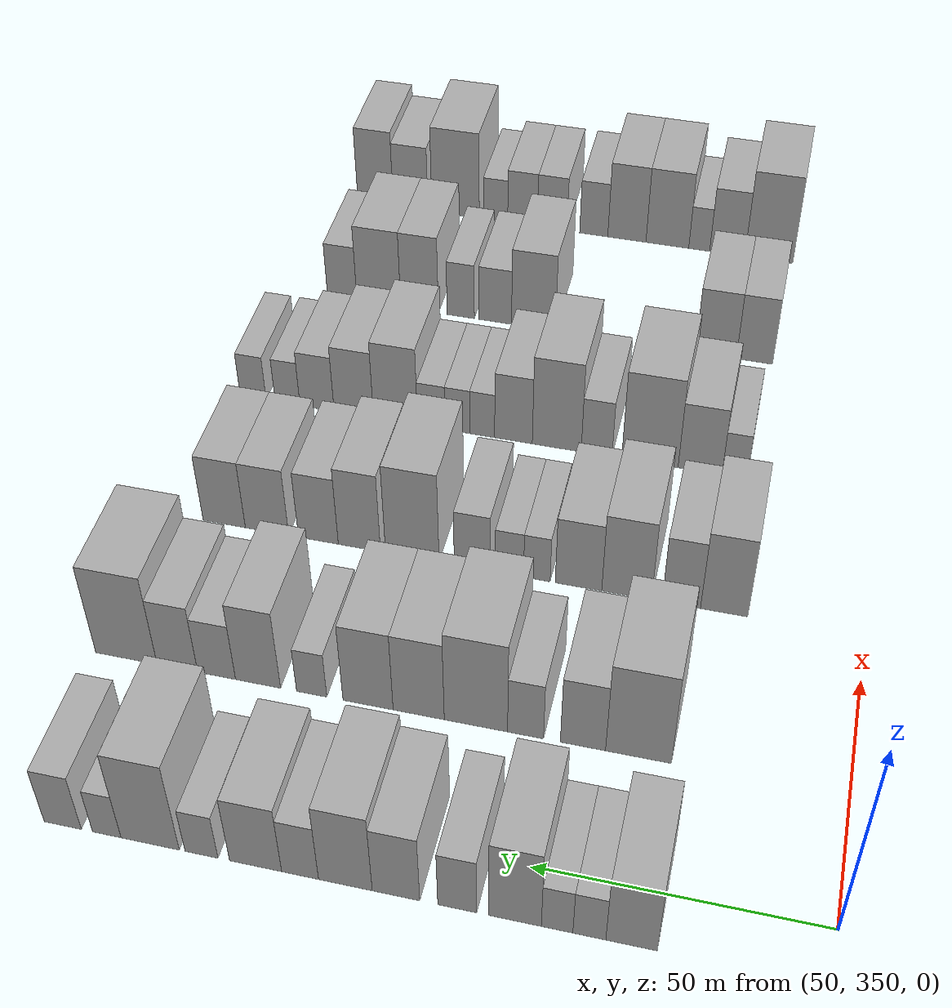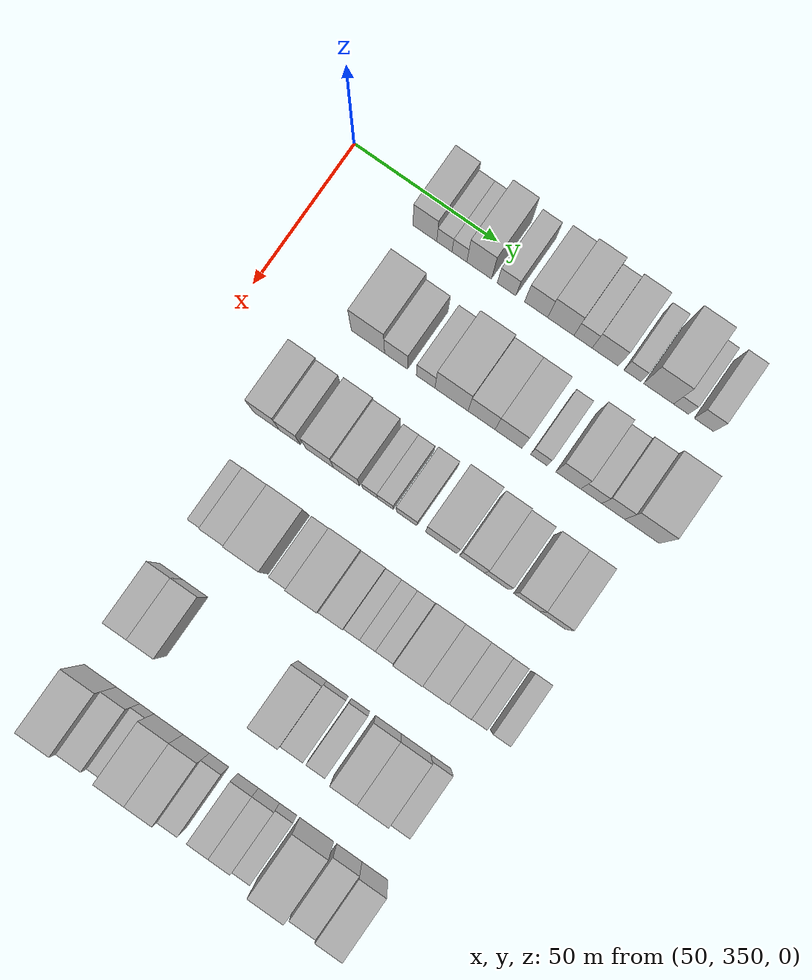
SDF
<sdf version="1.6">
 <world name="default">
  <model name="building_104">
   <static>1</static>
   <pose>50.0000 381.6446 0 0.000000 0.000000 0.000000</pose>
   <link name="link">
    <pose>0 0 9.00 0 0 0</pose>
    <collision name="collision"><geometry><box><size>20.0000 8.2494 18.0000</size></box></geometry></collision>
    <visual name="visual">
     <cast_shadows>0</cast_shadows>
     <geometry><box><size>20.0000 8.2494 18.0000</size></box></geometry>
     <material>
      <script>
       <uri>model://HANNAS_wall/materials/scripts</uri>
       <uri>model://HANNAS_wall/materials/textures</uri>
       <name>vrc/HANNAS_wall</name>
      </script>
     </material>
    </visual>
   </link>
  </model>
  <model name="building_105">
   <static>1</static>
   <pose>50.0000 388.4263 0 0.000000 0.000000 0.000000</pose>
   <link name="link">
    <pose>0 0 6.00 0 0 0</pose>
    <collision name="collision"><geometry><box><size>20.0000 5.3141 12.0000</size></box></geometry></collision>
    <visual name="visual">
     <cast_shadows>0</cast_shadows>
     <geometry><box><size>20.0000 5.3141 12.0000</size></box></geometry>
     <material>
      <script>
       <uri>model://HANNAS_wall/materials/scripts</uri>
       <uri>model://HANNAS_wall/materials/textures</uri>
       <name>vrc/HANNAS_wall</name>
      </script>
     </material>
    </visual>
   </link>
  </model>
  <model name="building_106">
   <static>1</static>
   <pose>50.0000 393.6430 0 0.000000 0.000000 0.000000</pose>
   <link name="link">
    <pose>0 0 6.00 0 0 0</pose>
    <collision name="collision"><geometry><box><size>20.0000 5.1193 12.0000</size></box></geometry></collision>
    <visual name="visual">
     <cast_shadows>0</cast_shadows>
     <geometry><box><size>20.0000 5.1193 12.0000</size></box></geometry>
     <material>
      <script>
       <uri>model://HANNAS_wall/materials/scripts</uri>
       <uri>model://HANNAS_wall/materials/textures</uri>
       <name>vrc/HANNAS_wall</name>
      </script>
     </material>
    </visual>
   </link>
  </model>
  <model name="building_107">
   <static>1</static>
   <pose>50.0000 400.4835 0 0.000000 0.000000 0.000000</pose>
   <link name="link">
    <pose>0 0 10.50 0 0 0</pose>
    <collision name="collision"><geometry><box><size>20.0000 8.5617 21.0000</size></box></geometry></collision>
    <visual name="visual">
     <cast_shadows>0</cast_shadows>
     <geometry><box><size>20.0000 8.5617 21.0000</size></box></geometry>
     <material>
      <script>
       <uri>model://HANNAS_wall/materials/scripts</uri>
       <uri>model://HANNAS_wall/materials/textures</uri>
       <name>vrc/HANNAS_wall</name>
      </script>
     </material>
    </visual>
   </link>
  </model>
  <model name="building_108">
   <static>1</static>
   <pose>50.0000 409.9893 0 0.000000 0.000000 0.000000</pose>
   <link name="link">
    <pose>0 0 7.50 0 0 0</pose>
    <collision name="collision"><geometry><box><size>20.0000 6.4499 15.0000</size></box></geometry></collision>
    <visual name="visual">
     <cast_shadows>0</cast_shadows>
     <geometry><box><size>20.0000 6.4499 15.0000</size></box></geometry>
     <material>
      <script>
       <uri>model://HANNAS_wall/materials/scripts</uri>
       <uri>model://HANNAS_wall/materials/textures</uri>
       <name>vrc/HANNAS_wall</name>
      </script>
     </material>
    </visual>
   </link>
  </model>
  <model name="building_109">
   <static>1</static>
   <pose>50.0000 420.1909 0 0.000000 0.000000 0.000000</pose>
   <link name="link">
    <pose>0 0 9.00 0 0 0</pose>
    <collision name="collision"><geometry><box><size>20.0000 7.9534 18.0000</size></box></geometry></collision>
    <visual name="visual">
     <cast_shadows>0</cast_shadows>
     <geometry><box><size>20.0000 7.9534 18.0000</size></box></geometry>
     <material>
      <script>
       <uri>model://HANNAS_wall/materials/scripts</uri>
       <uri>model://HANNAS_wall/materials/textures</uri>
       <name>vrc/HANNAS_wall</name>
      </script>
     </material>
    </visual>
   </link>
  </model>
  <model name="building_110">
   <static>1</static>
   <pose>50.0000 428.7106 0 0.000000 0.000000 0.000000</pose>
   <link name="link">
    <pose>0 0 10.50 0 0 0</pose>
    <collision name="collision"><geometry><box><size>20.0000 9.0861 21.0000</size></box></geometry></collision>
    <visual name="visual">
     <cast_shadows>0</cast_shadows>
     <geometry><box><size>20.0000 9.0861 21.0000</size></box></geometry>
     <material>
      <script>
       <uri>model://HANNAS_wall/materials/scripts</uri>
       <uri>model://HANNAS_wall/materials/textures</uri>
       <name>vrc/HANNAS_wall</name>
      </script>
     </material>
    </visual>
   </link>
  </model>
  <model name="building_111">
   <static>1</static>
   <pose>50.0000 436.3942 0 0.000000 0.000000 0.000000</pose>
   <link name="link">
    <pose>0 0 7.50 0 0 0</pose>
    <collision name="collision"><geometry><box><size>20.0000 6.2811 15.0000</size></box></geometry></collision>
    <visual name="visual">
     <cast_shadows>0</cast_shadows>
     <geometry><box><size>20.0000 6.2811 15.0000</size></box></geometry>
     <material>
      <script>
       <uri>model://HANNAS_wall/materials/scripts</uri>
       <uri>model://HANNAS_wall/materials/textures</uri>
       <name>vrc/HANNAS_wall</name>
      </script>
     </material>
    </visual>
   </link>
  </model>
  <model name="building_112">
   <static>1</static>
   <pose>50.0000 444.0253 0 0.000000 0.000000 0.000000</pose>
   <link name="link">
    <pose>0 0 9.00 0 0 0</pose>
    <collision name="collision"><geometry><box><size>20.0000 8.9812 18.0000</size></box></geometry></collision>
    <visual name="visual">
     <cast_shadows>0</cast_shadows>
     <geometry><box><size>20.0000 8.9812 18.0000</size></box></geometry>
     <material>
      <script>
       <uri>model://HANNAS_wall/materials/scripts</uri>
       <uri>model://HANNAS_wall/materials/textures</uri>
       <name>vrc/HANNAS_wall</name>
      </script>
     </material>
    </visual>
   </link>
  </model>
  <model name="building_113">
   <static>1</static>
   <pose>50.0000 453.3829 0 0.000000 0.000000 0.000000</pose>
   <link name="link">
    <pose>0 0 6.00 0 0 0</pose>
    <collision name="collision"><geometry><box><size>20.0000 5.7340 12.0000</size></box></geometry></collision>
    <visual name="visual">
     <cast_shadows>0</cast_shadows>
     <geometry><box><size>20.0000 5.7340 12.0000</size></box></geometry>
     <material>
      <script>
       <uri>model://HANNAS_wall/materials/scripts</uri>
       <uri>model://HANNAS_wall/materials/textures</uri>
       <name>vrc/HANNAS_wall</name>
      </script>
     </material>
    </visual>
   </link>
  </model>
  <model name="building_114">
   <static>1</static>
   <pose>50.0000 462.3751 0 0.000000 0.000000 0.000000</pose>
   <link name="link">
    <pose>0 0 12.00 0 0 0</pose>
    <collision name="collision"><geometry><box><size>20.0000 10.2504 24.0000</size></box></geometry></collision>
    <visual name="visual">
     <cast_shadows>0</cast_shadows>
     <geometry><box><size>20.0000 10.2504 24.0000</size></box></geometry>
     <material>
      <script>
       <uri>model://HANNAS_wall/materials/scripts</uri>
       <uri>model://HANNAS_wall/materials/textures</uri>
       <name>vrc/HANNAS_wall</name>
      </script>
     </material>
    </visual>
   </link>
  </model>
  <model name="building_115">
   <static>1</static>
   <pose>50.0000 470.0243 0 0.000000 0.000000 0.000000</pose>
   <link name="link">
    <pose>0 0 6.00 0 0 0</pose>
    <collision name="collision"><geometry><box><size>20.0000 5.0481 12.0000</size></box></geometry></collision>
    <visual name="visual">
     <cast_shadows>0</cast_shadows>
     <geometry><box><size>20.0000 5.0481 12.0000</size></box></geometry>
     <material>
      <script>
       <uri>model://HANNAS_wall/materials/scripts</uri>
       <uri>model://HANNAS_wall/materials/textures</uri>
       <name>vrc/HANNAS_wall</name>
      </script>
     </material>
    </visual>
   </link>
  </model>
  <model name="building_116">
   <static>1</static>
   <pose>50.0000 477.8656 0 0.000000 0.000000 0.000000</pose>
   <link name="link">
    <pose>0 0 7.50 0 0 0</pose>
    <collision name="collision"><geometry><box><size>20.0000 6.6344 15.0000</size></box></geometry></collision>
    <visual name="visual">
     <cast_shadows>0</cast_shadows>
     <geometry><box><size>20.0000 6.6344 15.0000</size></box></geometry>
     <material>
      <script>
       <uri>model://HANNAS_wall/materials/scripts</uri>
       <uri>model://HANNAS_wall/materials/textures</uri>
       <name>vrc/HANNAS_wall</name>
      </script>
     </material>
    </visual>
   </link>
  </model>
  <model name="building_234">
   <static>1</static>
   <pose>85.0000 386.3363 0 0.000000 0.000000 0.000000</pose>
   <link name="link">
    <pose>0 0 12.00 0 0 0</pose>
    <collision name="collision"><geometry><box><size>20.0000 11.5212 24.0000</size></box></geometry></collision>
    <visual name="visual">
     <cast_shadows>0</cast_shadows>
     <geometry><box><size>20.0000 11.5212 24.0000</size></box></geometry>
     <material>
      <script>
       <uri>model://HANNAS_wall/materials/scripts</uri>
       <uri>model://HANNAS_wall/materials/textures</uri>
       <name>vrc/HANNAS_wall</name>
      </script>
     </material>
    </visual>
   </link>
  </model>
  <model name="building_235">
   <static>1</static>
   <pose>85.0000 396.0856 0 0.000000 0.000000 0.000000</pose>
   <link name="link">
    <pose>0 0 9.00 0 0 0</pose>
    <collision name="collision"><geometry><box><size>20.0000 7.9775 18.0000</size></box></geometry></collision>
    <visual name="visual">
     <cast_shadows>0</cast_shadows>
     <geometry><box><size>20.0000 7.9775 18.0000</size></box></geometry>
     <material>
      <script>
       <uri>model://HANNAS_wall/materials/scripts</uri>
       <uri>model://HANNAS_wall/materials/textures</uri>
       <name>vrc/HANNAS_wall</name>
      </script>
     </material>
    </visual>
   </link>
  </model>
  <model name="building_236">
   <static>1</static>
   <pose>85.0000 406.2837 0 0.000000 0.000000 0.000000</pose>
   <link name="link">
    <pose>0 0 7.50 0 0 0</pose>
    <collision name="collision"><geometry><box><size>20.0000 6.4186 15.0000</size></box></geometry></collision>
    <visual name="visual">
     <cast_shadows>0</cast_shadows>
     <geometry><box><size>20.0000 6.4186 15.0000</size></box></geometry>
     <material>
      <script>
       <uri>model://HANNAS_wall/materials/scripts</uri>
       <uri>model://HANNAS_wall/materials/textures</uri>
       <name>vrc/HANNAS_wall</name>
      </script>
     </material>
    </visual>
   </link>
  </model>
  <model name="building_237">
   <static>1</static>
   <pose>85.0000 415.1947 0 0.000000 0.000000 0.000000</pose>
   <link name="link">
    <pose>0 0 12.00 0 0 0</pose>
    <collision name="collision"><geometry><box><size>20.0000 11.4033 24.0000</size></box></geometry></collision>
    <visual name="visual">
     <cast_shadows>0</cast_shadows>
     <geometry><box><size>20.0000 11.4033 24.0000</size></box></geometry>
     <material>
      <script>
       <uri>model://HANNAS_wall/materials/scripts</uri>
       <uri>model://HANNAS_wall/materials/textures</uri>
       <name>vrc/HANNAS_wall</name>
      </script>
     </material>
    </visual>
   </link>
  </model>
  <model name="building_238">
   <static>1</static>
   <pose>85.0000 425.5621 0 0.000000 0.000000 0.000000</pose>
   <link name="link">
    <pose>0 0 10.50 0 0 0</pose>
    <collision name="collision"><geometry><box><size>20.0000 9.3316 21.0000</size></box></geometry></collision>
    <visual name="visual">
     <cast_shadows>0</cast_shadows>
     <geometry><box><size>20.0000 9.3316 21.0000</size></box></geometry>
     <material>
      <script>
       <uri>model://HANNAS_wall/materials/scripts</uri>
       <uri>model://HANNAS_wall/materials/textures</uri>
       <name>vrc/HANNAS_wall</name>
      </script>
     </material>
    </visual>
   </link>
  </model>
  <model name="building_239">
   <static>1</static>
   <pose>85.0000 434.8440 0 0.000000 0.000000 0.000000</pose>
   <link name="link">
    <pose>0 0 10.50 0 0 0</pose>
    <collision name="collision"><geometry><box><size>20.0000 9.2321 21.0000</size></box></geometry></collision>
    <visual name="visual">
     <cast_shadows>0</cast_shadows>
     <geometry><box><size>20.0000 9.2321 21.0000</size></box></geometry>
     <material>
      <script>
       <uri>model://HANNAS_wall/materials/scripts</uri>
       <uri>model://HANNAS_wall/materials/textures</uri>
       <name>vrc/HANNAS_wall</name>
      </script>
     </material>
    </visual>
   </link>
  </model>
  <model name="building_240">
   <static>1</static>
   <pose>85.0000 445.2765 0 0.000000 0.000000 0.000000</pose>
   <link name="link">
    <pose>0 0 6.00 0 0 0</pose>
    <collision name="collision"><geometry><box><size>20.0000 5.6329 12.0000</size></box></geometry></collision>
    <visual name="visual">
     <cast_shadows>0</cast_shadows>
     <geometry><box><size>20.0000 5.6329 12.0000</size></box></geometry>
     <material>
      <script>
       <uri>model://HANNAS_wall/materials/scripts</uri>
       <uri>model://HANNAS_wall/materials/textures</uri>
       <name>vrc/HANNAS_wall</name>
      </script>
     </material>
    </visual>
   </link>
  </model>
  <model name="building_241">
   <static>1</static>
   <pose>85.0000 455.3296 0 0.000000 0.000000 0.000000</pose>
   <link name="link">
    <pose>0 0 10.50 0 0 0</pose>
    <collision name="collision"><geometry><box><size>20.0000 8.4732 21.0000</size></box></geometry></collision>
    <visual name="visual">
     <cast_shadows>0</cast_shadows>
     <geometry><box><size>20.0000 8.4732 21.0000</size></box></geometry>
     <material>
      <script>
       <uri>model://HANNAS_wall/materials/scripts</uri>
       <uri>model://HANNAS_wall/materials/textures</uri>
       <name>vrc/HANNAS_wall</name>
      </script>
     </material>
    </visual>
   </link>
  </model>
  <model name="building_242">
   <static>1</static>
   <pose>85.0000 463.1607 0 0.000000 0.000000 0.000000</pose>
   <link name="link">
    <pose>0 0 7.50 0 0 0</pose>
    <collision name="collision"><geometry><box><size>20.0000 7.1891 15.0000</size></box></geometry></collision>
    <visual name="visual">
     <cast_shadows>0</cast_shadows>
     <geometry><box><size>20.0000 7.1891 15.0000</size></box></geometry>
     <material>
      <script>
       <uri>model://HANNAS_wall/materials/scripts</uri>
       <uri>model://HANNAS_wall/materials/textures</uri>
       <name>vrc/HANNAS_wall</name>
      </script>
     </material>
    </visual>
   </link>
  </model>
  <model name="building_243">
   <static>1</static>
   <pose>85.0000 470.6412 0 0.000000 0.000000 0.000000</pose>
   <link name="link">
    <pose>0 0 9.00 0 0 0</pose>
    <collision name="collision"><geometry><box><size>20.0000 7.7719 18.0000</size></box></geometry></collision>
    <visual name="visual">
     <cast_shadows>0</cast_shadows>
     <geometry><box><size>20.0000 7.7719 18.0000</size></box></geometry>
     <material>
      <script>
       <uri>model://HANNAS_wall/materials/scripts</uri>
       <uri>model://HANNAS_wall/materials/textures</uri>
       <name>vrc/HANNAS_wall</name>
      </script>
     </material>
    </visual>
   </link>
  </model>
  <model name="building_244">
   <static>1</static>
   <pose>85.0000 480.4508 0 0.000000 0.000000 0.000000</pose>
   <link name="link">
    <pose>0 0 12.00 0 0 0</pose>
    <collision name="collision"><geometry><box><size>20.0000 11.8473 24.0000</size></box></geometry></collision>
    <visual name="visual">
     <cast_shadows>0</cast_shadows>
     <geometry><box><size>20.0000 11.8473 24.0000</size></box></geometry>
     <material>
      <script>
       <uri>model://HANNAS_wall/materials/scripts</uri>
       <uri>model://HANNAS_wall/materials/textures</uri>
       <name>vrc/HANNAS_wall</name>
      </script>
     </material>
    </visual>
   </link>
  </model>
  <model name="building_356">
   <static>1</static>
   <pose>120.0000 375.9862 0 0.000000 0.000000 0.000000</pose>
   <link name="link">
    <pose>0 0 10.50 0 0 0</pose>
    <collision name="collision"><geometry><box><size>20.0000 8.8281 21.0000</size></box></geometry></collision>
    <visual name="visual">
     <cast_shadows>0</cast_shadows>
     <geometry><box><size>20.0000 8.8281 21.0000</size></box></geometry>
     <material>
      <script>
       <uri>model://HANNAS_wall/materials/scripts</uri>
       <uri>model://HANNAS_wall/materials/textures</uri>
       <name>vrc/HANNAS_wall</name>
      </script>
     </material>
    </visual>
   </link>
  </model>
  <model name="building_357">
   <static>1</static>
   <pose>120.0000 384.0091 0 0.000000 0.000000 0.000000</pose>
   <link name="link">
    <pose>0 0 9.00 0 0 0</pose>
    <collision name="collision"><geometry><box><size>20.0000 7.2177 18.0000</size></box></geometry></collision>
    <visual name="visual">
     <cast_shadows>0</cast_shadows>
     <geometry><box><size>20.0000 7.2177 18.0000</size></box></geometry>
     <material>
      <script>
       <uri>model://HANNAS_wall/materials/scripts</uri>
       <uri>model://HANNAS_wall/materials/textures</uri>
       <name>vrc/HANNAS_wall</name>
      </script>
     </material>
    </visual>
   </link>
  </model>
  <model name="building_358">
   <static>1</static>
   <pose>120.0000 394.3634 0 0.000000 0.000000 0.000000</pose>
   <link name="link">
    <pose>0 0 10.50 0 0 0</pose>
    <collision name="collision"><geometry><box><size>20.0000 9.4908 21.0000</size></box></geometry></collision>
    <visual name="visual">
     <cast_shadows>0</cast_shadows>
     <geometry><box><size>20.0000 9.4908 21.0000</size></box></geometry>
     <material>
      <script>
       <uri>model://HANNAS_wall/materials/scripts</uri>
       <uri>model://HANNAS_wall/materials/textures</uri>
       <name>vrc/HANNAS_wall</name>
      </script>
     </material>
    </visual>
   </link>
  </model>
  <model name="building_359">
   <static>1</static>
   <pose>120.0000 403.5665 0 0.000000 0.000000 0.000000</pose>
   <link name="link">
    <pose>0 0 9.00 0 0 0</pose>
    <collision name="collision"><geometry><box><size>20.0000 8.9153 18.0000</size></box></geometry></collision>
    <visual name="visual">
     <cast_shadows>0</cast_shadows>
     <geometry><box><size>20.0000 8.9153 18.0000</size></box></geometry>
     <material>
      <script>
       <uri>model://HANNAS_wall/materials/scripts</uri>
       <uri>model://HANNAS_wall/materials/textures</uri>
       <name>vrc/HANNAS_wall</name>
      </script>
     </material>
    </visual>
   </link>
  </model>
  <model name="building_360">
   <static>1</static>
   <pose>120.0000 411.5930 0 0.000000 0.000000 0.000000</pose>
   <link name="link">
    <pose>0 0 6.00 0 0 0</pose>
    <collision name="collision"><geometry><box><size>20.0000 5.1377 12.0000</size></box></geometry></collision>
    <visual name="visual">
     <cast_shadows>0</cast_shadows>
     <geometry><box><size>20.0000 5.1377 12.0000</size></box></geometry>
     <material>
      <script>
       <uri>model://HANNAS_wall/materials/scripts</uri>
       <uri>model://HANNAS_wall/materials/textures</uri>
       <name>vrc/HANNAS_wall</name>
      </script>
     </material>
    </visual>
   </link>
  </model>
  <model name="building_361">
   <static>1</static>
   <pose>120.0000 416.9064 0 0.000000 0.000000 0.000000</pose>
   <link name="link">
    <pose>0 0 6.00 0 0 0</pose>
    <collision name="collision"><geometry><box><size>20.0000 5.4892 12.0000</size></box></geometry></collision>
    <visual name="visual">
     <cast_shadows>0</cast_shadows>
     <geometry><box><size>20.0000 5.4892 12.0000</size></box></geometry>
     <material>
      <script>
       <uri>model://HANNAS_wall/materials/scripts</uri>
       <uri>model://HANNAS_wall/materials/textures</uri>
       <name>vrc/HANNAS_wall</name>
      </script>
     </material>
    </visual>
   </link>
  </model>
  <model name="building_362">
   <static>1</static>
   <pose>120.0000 424.1684 0 0.000000 0.000000 0.000000</pose>
   <link name="link">
    <pose>0 0 7.50 0 0 0</pose>
    <collision name="collision"><geometry><box><size>20.0000 7.0348 15.0000</size></box></geometry></collision>
    <visual name="visual">
     <cast_shadows>0</cast_shadows>
     <geometry><box><size>20.0000 7.0348 15.0000</size></box></geometry>
     <material>
      <script>
       <uri>model://HANNAS_wall/materials/scripts</uri>
       <uri>model://HANNAS_wall/materials/textures</uri>
       <name>vrc/HANNAS_wall</name>
      </script>
     </material>
    </visual>
   </link>
  </model>
  <model name="building_363">
   <static>1</static>
   <pose>120.0000 435.9943 0 0.000000 0.000000 0.000000</pose>
   <link name="link">
    <pose>0 0 12.00 0 0 0</pose>
    <collision name="collision"><geometry><box><size>20.0000 10.6171 24.0000</size></box></geometry></collision>
    <visual name="visual">
     <cast_shadows>0</cast_shadows>
     <geometry><box><size>20.0000 10.6171 24.0000</size></box></geometry>
     <material>
      <script>
       <uri>model://HANNAS_wall/materials/scripts</uri>
       <uri>model://HANNAS_wall/materials/textures</uri>
       <name>vrc/HANNAS_wall</name>
      </script>
     </material>
    </visual>
   </link>
  </model>
  <model name="building_364">
   <static>1</static>
   <pose>120.0000 446.5358 0 0.000000 0.000000 0.000000</pose>
   <link name="link">
    <pose>0 0 10.50 0 0 0</pose>
    <collision name="collision"><geometry><box><size>20.0000 8.4660 21.0000</size></box></geometry></collision>
    <visual name="visual">
     <cast_shadows>0</cast_shadows>
     <geometry><box><size>20.0000 8.4660 21.0000</size></box></geometry>
     <material>
      <script>
       <uri>model://HANNAS_wall/materials/scripts</uri>
       <uri>model://HANNAS_wall/materials/textures</uri>
       <name>vrc/HANNAS_wall</name>
      </script>
     </material>
    </visual>
   </link>
  </model>
  <model name="building_365">
   <static>1</static>
   <pose>120.0000 454.7809 0 0.000000 0.000000 0.000000</pose>
   <link name="link">
    <pose>0 0 9.00 0 0 0</pose>
    <collision name="collision"><geometry><box><size>20.0000 8.0242 18.0000</size></box></geometry></collision>
    <visual name="visual">
     <cast_shadows>0</cast_shadows>
     <geometry><box><size>20.0000 8.0242 18.0000</size></box></geometry>
     <material>
      <script>
       <uri>model://HANNAS_wall/materials/scripts</uri>
       <uri>model://HANNAS_wall/materials/textures</uri>
       <name>vrc/HANNAS_wall</name>
      </script>
     </material>
    </visual>
   </link>
  </model>
  <model name="building_366">
   <static>1</static>
   <pose>120.0000 465.2200 0 0.000000 0.000000 0.000000</pose>
   <link name="link">
    <pose>0 0 9.00 0 0 0</pose>
    <collision name="collision"><geometry><box><size>20.0000 8.8541 18.0000</size></box></geometry></collision>
    <visual name="visual">
     <cast_shadows>0</cast_shadows>
     <geometry><box><size>20.0000 8.8541 18.0000</size></box></geometry>
     <material>
      <script>
       <uri>model://HANNAS_wall/materials/scripts</uri>
       <uri>model://HANNAS_wall/materials/textures</uri>
       <name>vrc/HANNAS_wall</name>
      </script>
     </material>
    </visual>
   </link>
  </model>
  <model name="building_367">
   <static>1</static>
   <pose>120.0000 473.9905 0 0.000000 0.000000 0.000000</pose>
   <link name="link">
    <pose>0 0 9.00 0 0 0</pose>
    <collision name="collision"><geometry><box><size>20.0000 8.6868 18.0000</size></box></geometry></collision>
    <visual name="visual">
     <cast_shadows>0</cast_shadows>
     <geometry><box><size>20.0000 8.6868 18.0000</size></box></geometry>
     <material>
      <script>
       <uri>model://HANNAS_wall/materials/scripts</uri>
       <uri>model://HANNAS_wall/materials/textures</uri>
       <name>vrc/HANNAS_wall</name>
      </script>
     </material>
    </visual>
   </link>
  </model>
  <model name="building_488">
   <static>1</static>
   <pose>155.0000 378.3842 0 0.000000 0.000000 0.000000</pose>
   <link name="link">
    <pose>0 0 6.00 0 0 0</pose>
    <collision name="collision"><geometry><box><size>20.0000 5.0669 12.0000</size></box></geometry></collision>
    <visual name="visual">
     <cast_shadows>0</cast_shadows>
     <geometry><box><size>20.0000 5.0669 12.0000</size></box></geometry>
     <material>
      <script>
       <uri>model://HANNAS_wall/materials/scripts</uri>
       <uri>model://HANNAS_wall/materials/textures</uri>
       <name>vrc/HANNAS_wall</name>
      </script>
     </material>
    </visual>
   </link>
  </model>
  <model name="building_489">
   <static>1</static>
   <pose>155.0000 385.3664 0 0.000000 0.000000 0.000000</pose>
   <link name="link">
    <pose>0 0 9.00 0 0 0</pose>
    <collision name="collision"><geometry><box><size>20.0000 8.8975 18.0000</size></box></geometry></collision>
    <visual name="visual">
     <cast_shadows>0</cast_shadows>
     <geometry><box><size>20.0000 8.8975 18.0000</size></box></geometry>
     <material>
      <script>
       <uri>model://HANNAS_wall/materials/scripts</uri>
       <uri>model://HANNAS_wall/materials/textures</uri>
       <name>vrc/HANNAS_wall</name>
      </script>
     </material>
    </visual>
   </link>
  </model>
  <model name="building_490">
   <static>1</static>
   <pose>155.0000 395.5703 0 0.000000 0.000000 0.000000</pose>
   <link name="link">
    <pose>0 0 12.00 0 0 0</pose>
    <collision name="collision"><geometry><box><size>20.0000 11.5102 24.0000</size></box></geometry></collision>
    <visual name="visual">
     <cast_shadows>0</cast_shadows>
     <geometry><box><size>20.0000 11.5102 24.0000</size></box></geometry>
     <material>
      <script>
       <uri>model://HANNAS_wall/materials/scripts</uri>
       <uri>model://HANNAS_wall/materials/textures</uri>
       <name>vrc/HANNAS_wall</name>
      </script>
     </material>
    </visual>
   </link>
  </model>
  <model name="building_491">
   <static>1</static>
   <pose>155.0000 406.5127 0 0.000000 0.000000 0.000000</pose>
   <link name="link">
    <pose>0 0 7.50 0 0 0</pose>
    <collision name="collision"><geometry><box><size>20.0000 6.3747 15.0000</size></box></geometry></collision>
    <visual name="visual">
     <cast_shadows>0</cast_shadows>
     <geometry><box><size>20.0000 6.3747 15.0000</size></box></geometry>
     <material>
      <script>
       <uri>model://HANNAS_wall/materials/scripts</uri>
       <uri>model://HANNAS_wall/materials/textures</uri>
       <name>vrc/HANNAS_wall</name>
      </script>
     </material>
    </visual>
   </link>
  </model>
  <model name="building_492">
   <static>1</static>
   <pose>155.0000 414.7891 0 0.000000 0.000000 0.000000</pose>
   <link name="link">
    <pose>0 0 12.00 0 0 0</pose>
    <collision name="collision"><geometry><box><size>20.0000 10.1780 24.0000</size></box></geometry></collision>
    <visual name="visual">
     <cast_shadows>0</cast_shadows>
     <geometry><box><size>20.0000 10.1780 24.0000</size></box></geometry>
     <material>
      <script>
       <uri>model://HANNAS_wall/materials/scripts</uri>
       <uri>model://HANNAS_wall/materials/textures</uri>
       <name>vrc/HANNAS_wall</name>
      </script>
     </material>
    </visual>
   </link>
  </model>
  <model name="building_493">
   <static>1</static>
   <pose>155.0000 423.8213 0 0.000000 0.000000 0.000000</pose>
   <link name="link">
    <pose>0 0 9.00 0 0 0</pose>
    <collision name="collision"><geometry><box><size>20.0000 7.8865 18.0000</size></box></geometry></collision>
    <visual name="visual">
     <cast_shadows>0</cast_shadows>
     <geometry><box><size>20.0000 7.8865 18.0000</size></box></geometry>
     <material>
      <script>
       <uri>model://HANNAS_wall/materials/scripts</uri>
       <uri>model://HANNAS_wall/materials/textures</uri>
       <name>vrc/HANNAS_wall</name>
      </script>
     </material>
    </visual>
   </link>
  </model>
  <model name="building_494">
   <static>1</static>
   <pose>155.0000 430.3783 0 0.000000 0.000000 0.000000</pose>
   <link name="link">
    <pose>0 0 6.00 0 0 0</pose>
    <collision name="collision"><geometry><box><size>20.0000 5.2275 12.0000</size></box></geometry></collision>
    <visual name="visual">
     <cast_shadows>0</cast_shadows>
     <geometry><box><size>20.0000 5.2275 12.0000</size></box></geometry>
     <material>
      <script>
       <uri>model://HANNAS_wall/materials/scripts</uri>
       <uri>model://HANNAS_wall/materials/textures</uri>
       <name>vrc/HANNAS_wall</name>
      </script>
     </material>
    </visual>
   </link>
  </model>
  <model name="building_495">
   <static>1</static>
   <pose>155.0000 435.6176 0 0.000000 0.000000 0.000000</pose>
   <link name="link">
    <pose>0 0 6.00 0 0 0</pose>
    <collision name="collision"><geometry><box><size>20.0000 5.2511 12.0000</size></box></geometry></collision>
    <visual name="visual">
     <cast_shadows>0</cast_shadows>
     <geometry><box><size>20.0000 5.2511 12.0000</size></box></geometry>
     <material>
      <script>
       <uri>model://HANNAS_wall/materials/scripts</uri>
       <uri>model://HANNAS_wall/materials/textures</uri>
       <name>vrc/HANNAS_wall</name>
      </script>
     </material>
    </visual>
   </link>
  </model>
  <model name="building_496">
   <static>1</static>
   <pose>155.0000 441.1735 0 0.000000 0.000000 0.000000</pose>
   <link name="link">
    <pose>0 0 6.00 0 0 0</pose>
    <collision name="collision"><geometry><box><size>20.0000 5.8608 12.0000</size></box></geometry></collision>
    <visual name="visual">
     <cast_shadows>0</cast_shadows>
     <geometry><box><size>20.0000 5.8608 12.0000</size></box></geometry>
     <material>
      <script>
       <uri>model://HANNAS_wall/materials/scripts</uri>
       <uri>model://HANNAS_wall/materials/textures</uri>
       <name>vrc/HANNAS_wall</name>
      </script>
     </material>
    </visual>
   </link>
  </model>
  <model name="building_497">
   <static>1</static>
   <pose>155.0000 448.8467 0 0.000000 0.000000 0.000000</pose>
   <link name="link">
    <pose>0 0 10.50 0 0 0</pose>
    <collision name="collision"><geometry><box><size>20.0000 9.4856 21.0000</size></box></geometry></collision>
    <visual name="visual">
     <cast_shadows>0</cast_shadows>
     <geometry><box><size>20.0000 9.4856 21.0000</size></box></geometry>
     <material>
      <script>
       <uri>model://HANNAS_wall/materials/scripts</uri>
       <uri>model://HANNAS_wall/materials/textures</uri>
       <name>vrc/HANNAS_wall</name>
      </script>
     </material>
    </visual>
   </link>
  </model>
  <model name="building_498">
   <static>1</static>
   <pose>155.0000 457.8550 0 0.000000 0.000000 0.000000</pose>
   <link name="link">
    <pose>0 0 9.00 0 0 0</pose>
    <collision name="collision"><geometry><box><size>20.0000 8.5311 18.0000</size></box></geometry></collision>
    <visual name="visual">
     <cast_shadows>0</cast_shadows>
     <geometry><box><size>20.0000 8.5311 18.0000</size></box></geometry>
     <material>
      <script>
       <uri>model://HANNAS_wall/materials/scripts</uri>
       <uri>model://HANNAS_wall/materials/textures</uri>
       <name>vrc/HANNAS_wall</name>
      </script>
     </material>
    </visual>
   </link>
  </model>
  <model name="building_499">
   <static>1</static>
   <pose>155.0000 465.8380 0 0.000000 0.000000 0.000000</pose>
   <link name="link">
    <pose>0 0 7.50 0 0 0</pose>
    <collision name="collision"><geometry><box><size>20.0000 7.4348 15.0000</size></box></geometry></collision>
    <visual name="visual">
     <cast_shadows>0</cast_shadows>
     <geometry><box><size>20.0000 7.4348 15.0000</size></box></geometry>
     <material>
      <script>
       <uri>model://HANNAS_wall/materials/scripts</uri>
       <uri>model://HANNAS_wall/materials/textures</uri>
       <name>vrc/HANNAS_wall</name>
      </script>
     </material>
    </visual>
   </link>
  </model>
  <model name="building_500">
   <static>1</static>
   <pose>155.0000 472.2700 0 0.000000 0.000000 0.000000</pose>
   <link name="link">
    <pose>0 0 6.00 0 0 0</pose>
    <collision name="collision"><geometry><box><size>20.0000 5.4293 12.0000</size></box></geometry></collision>
    <visual name="visual">
     <cast_shadows>0</cast_shadows>
     <geometry><box><size>20.0000 5.4293 12.0000</size></box></geometry>
     <material>
      <script>
       <uri>model://HANNAS_wall/materials/scripts</uri>
       <uri>model://HANNAS_wall/materials/textures</uri>
       <name>vrc/HANNAS_wall</name>
      </script>
     </material>
    </visual>
   </link>
  </model>
  <model name="building_501">
   <static>1</static>
   <pose>155.0000 479.8411 0 0.000000 0.000000 0.000000</pose>
   <link name="link">
    <pose>0 0 6.00 0 0 0</pose>
    <collision name="collision"><geometry><box><size>20.0000 5.7128 12.0000</size></box></geometry></collision>
    <visual name="visual">
     <cast_shadows>0</cast_shadows>
     <geometry><box><size>20.0000 5.7128 12.0000</size></box></geometry>
     <material>
      <script>
       <uri>model://HANNAS_wall/materials/scripts</uri>
       <uri>model://HANNAS_wall/materials/textures</uri>
       <name>vrc/HANNAS_wall</name>
      </script>
     </material>
    </visual>
   </link>
  </model>
  <model name="building_617">
   <static>1</static>
   <pose>190.0000 378.4721 0 0.000000 0.000000 0.000000</pose>
   <link name="link">
    <pose>0 0 9.00 0 0 0</pose>
    <collision name="collision"><geometry><box><size>20.0000 7.8103 18.0000</size></box></geometry></collision>
    <visual name="visual">
     <cast_shadows>0</cast_shadows>
     <geometry><box><size>20.0000 7.8103 18.0000</size></box></geometry>
     <material>
      <script>
       <uri>model://HANNAS_wall/materials/scripts</uri>
       <uri>model://HANNAS_wall/materials/textures</uri>
       <name>vrc/HANNAS_wall</name>
      </script>
     </material>
    </visual>
   </link>
  </model>
  <model name="building_618">
   <static>1</static>
   <pose>190.0000 386.7947 0 0.000000 0.000000 0.000000</pose>
   <link name="link">
    <pose>0 0 9.00 0 0 0</pose>
    <collision name="collision"><geometry><box><size>20.0000 8.8347 18.0000</size></box></geometry></collision>
    <visual name="visual">
     <cast_shadows>0</cast_shadows>
     <geometry><box><size>20.0000 8.8347 18.0000</size></box></geometry>
     <material>
      <script>
       <uri>model://HANNAS_wall/materials/scripts</uri>
       <uri>model://HANNAS_wall/materials/textures</uri>
       <name>vrc/HANNAS_wall</name>
      </script>
     </material>
    </visual>
   </link>
  </model>
  <model name="building_619">
   <static>1</static>
   <pose>190.0000 427.0063 0 0.000000 0.000000 0.000000</pose>
   <link name="link">
    <pose>0 0 10.50 0 0 0</pose>
    <collision name="collision"><geometry><box><size>20.0000 9.8629 21.0000</size></box></geometry></collision>
    <visual name="visual">
     <cast_shadows>0</cast_shadows>
     <geometry><box><size>20.0000 9.8629 21.0000</size></box></geometry>
     <material>
      <script>
       <uri>model://HANNAS_wall/materials/scripts</uri>
       <uri>model://HANNAS_wall/materials/textures</uri>
       <name>vrc/HANNAS_wall</name>
      </script>
     </material>
    </visual>
   </link>
  </model>
  <model name="building_620">
   <static>1</static>
   <pose>190.0000 435.6390 0 0.000000 0.000000 0.000000</pose>
   <link name="link">
    <pose>0 0 7.50 0 0 0</pose>
    <collision name="collision"><geometry><box><size>20.0000 7.4024 15.0000</size></box></geometry></collision>
    <visual name="visual">
     <cast_shadows>0</cast_shadows>
     <geometry><box><size>20.0000 7.4024 15.0000</size></box></geometry>
     <material>
      <script>
       <uri>model://HANNAS_wall/materials/scripts</uri>
       <uri>model://HANNAS_wall/materials/textures</uri>
       <name>vrc/HANNAS_wall</name>
      </script>
     </material>
    </visual>
   </link>
  </model>
  <model name="building_621">
   <static>1</static>
   <pose>190.0000 443.4324 0 0.000000 0.000000 0.000000</pose>
   <link name="link">
    <pose>0 0 7.50 0 0 0</pose>
    <collision name="collision"><geometry><box><size>20.0000 6.1844 15.0000</size></box></geometry></collision>
    <visual name="visual">
     <cast_shadows>0</cast_shadows>
     <geometry><box><size>20.0000 6.1844 15.0000</size></box></geometry>
     <material>
      <script>
       <uri>model://HANNAS_wall/materials/scripts</uri>
       <uri>model://HANNAS_wall/materials/textures</uri>
       <name>vrc/HANNAS_wall</name>
      </script>
     </material>
    </visual>
   </link>
  </model>
  <model name="building_622">
   <static>1</static>
   <pose>190.0000 452.8432 0 0.000000 0.000000 0.000000</pose>
   <link name="link">
    <pose>0 0 10.50 0 0 0</pose>
    <collision name="collision"><geometry><box><size>20.0000 8.6372 21.0000</size></box></geometry></collision>
    <visual name="visual">
     <cast_shadows>0</cast_shadows>
     <geometry><box><size>20.0000 8.6372 21.0000</size></box></geometry>
     <material>
      <script>
       <uri>model://HANNAS_wall/materials/scripts</uri>
       <uri>model://HANNAS_wall/materials/textures</uri>
       <name>vrc/HANNAS_wall</name>
      </script>
     </material>
    </visual>
   </link>
  </model>
  <model name="building_623">
   <static>1</static>
   <pose>190.0000 462.2333 0 0.000000 0.000000 0.000000</pose>
   <link name="link">
    <pose>0 0 10.50 0 0 0</pose>
    <collision name="collision"><geometry><box><size>20.0000 10.1431 21.0000</size></box></geometry></collision>
    <visual name="visual">
     <cast_shadows>0</cast_shadows>
     <geometry><box><size>20.0000 10.1431 21.0000</size></box></geometry>
     <material>
      <script>
       <uri>model://HANNAS_wall/materials/scripts</uri>
       <uri>model://HANNAS_wall/materials/textures</uri>
       <name>vrc/HANNAS_wall</name>
      </script>
     </material>
    </visual>
   </link>
  </model>
  <model name="building_624">
   <static>1</static>
   <pose>190.0000 470.7242 0 0.000000 0.000000 0.000000</pose>
   <link name="link">
    <pose>0 0 7.50 0 0 0</pose>
    <collision name="collision"><geometry><box><size>20.0000 6.8386 15.0000</size></box></geometry></collision>
    <visual name="visual">
     <cast_shadows>0</cast_shadows>
     <geometry><box><size>20.0000 6.8386 15.0000</size></box></geometry>
     <material>
      <script>
       <uri>model://HANNAS_wall/materials/scripts</uri>
       <uri>model://HANNAS_wall/materials/textures</uri>
       <name>vrc/HANNAS_wall</name>
      </script>
     </material>
    </visual>
   </link>
  </model>
  <model name="building_747">
   <static>1</static>
   <pose>225.0000 379.2323 0 0.000000 0.000000 0.000000</pose>
   <link name="link">
    <pose>0 0 12.00 0 0 0</pose>
    <collision name="collision"><geometry><box><size>20.0000 10.9925 24.0000</size></box></geometry></collision>
    <visual name="visual">
     <cast_shadows>0</cast_shadows>
     <geometry><box><size>20.0000 10.9925 24.0000</size></box></geometry>
     <material>
      <script>
       <uri>model://HANNAS_wall/materials/scripts</uri>
       <uri>model://HANNAS_wall/materials/textures</uri>
       <name>vrc/HANNAS_wall</name>
      </script>
     </material>
    </visual>
   </link>
  </model>
  <model name="building_748">
   <static>1</static>
   <pose>225.0000 388.7865 0 0.000000 0.000000 0.000000</pose>
   <link name="link">
    <pose>0 0 9.00 0 0 0</pose>
    <collision name="collision"><geometry><box><size>20.0000 8.1160 18.0000</size></box></geometry></collision>
    <visual name="visual">
     <cast_shadows>0</cast_shadows>
     <geometry><box><size>20.0000 8.1160 18.0000</size></box></geometry>
     <material>
      <script>
       <uri>model://HANNAS_wall/materials/scripts</uri>
       <uri>model://HANNAS_wall/materials/textures</uri>
       <name>vrc/HANNAS_wall</name>
      </script>
     </material>
    </visual>
   </link>
  </model>
  <model name="building_749">
   <static>1</static>
   <pose>225.0000 395.2721 0 0.000000 0.000000 0.000000</pose>
   <link name="link">
    <pose>0 0 6.00 0 0 0</pose>
    <collision name="collision"><geometry><box><size>20.0000 4.8551 12.0000</size></box></geometry></collision>
    <visual name="visual">
     <cast_shadows>0</cast_shadows>
     <geometry><box><size>20.0000 4.8551 12.0000</size></box></geometry>
     <material>
      <script>
       <uri>model://HANNAS_wall/materials/scripts</uri>
       <uri>model://HANNAS_wall/materials/textures</uri>
       <name>vrc/HANNAS_wall</name>
      </script>
     </material>
    </visual>
   </link>
  </model>
  <model name="building_750">
   <static>1</static>
   <pose>225.0000 402.7012 0 0.000000 0.000000 0.000000</pose>
   <link name="link">
    <pose>0 0 10.50 0 0 0</pose>
    <collision name="collision"><geometry><box><size>20.0000 10.0032 21.0000</size></box></geometry></collision>
    <visual name="visual">
     <cast_shadows>0</cast_shadows>
     <geometry><box><size>20.0000 10.0032 21.0000</size></box></geometry>
     <material>
      <script>
       <uri>model://HANNAS_wall/materials/scripts</uri>
       <uri>model://HANNAS_wall/materials/textures</uri>
       <name>vrc/HANNAS_wall</name>
      </script>
     </material>
    </visual>
   </link>
  </model>
  <model name="building_751">
   <static>1</static>
   <pose>225.0000 412.1993 0 0.000000 0.000000 0.000000</pose>
   <link name="link">
    <pose>0 0 10.50 0 0 0</pose>
    <collision name="collision"><geometry><box><size>20.0000 8.9929 21.0000</size></box></geometry></collision>
    <visual name="visual">
     <cast_shadows>0</cast_shadows>
     <geometry><box><size>20.0000 8.9929 21.0000</size></box></geometry>
     <material>
      <script>
       <uri>model://HANNAS_wall/materials/scripts</uri>
       <uri>model://HANNAS_wall/materials/textures</uri>
       <name>vrc/HANNAS_wall</name>
      </script>
     </material>
    </visual>
   </link>
  </model>
  <model name="building_752">
   <static>1</static>
   <pose>225.0000 420.0232 0 0.000000 0.000000 0.000000</pose>
   <link name="link">
    <pose>0 0 7.50 0 0 0</pose>
    <collision name="collision"><geometry><box><size>20.0000 6.6549 15.0000</size></box></geometry></collision>
    <visual name="visual">
     <cast_shadows>0</cast_shadows>
     <geometry><box><size>20.0000 6.6549 15.0000</size></box></geometry>
     <material>
      <script>
       <uri>model://HANNAS_wall/materials/scripts</uri>
       <uri>model://HANNAS_wall/materials/textures</uri>
       <name>vrc/HANNAS_wall</name>
      </script>
     </material>
    </visual>
   </link>
  </model>
  <model name="building_753">
   <static>1</static>
   <pose>225.0000 429.8808 0 0.000000 0.000000 0.000000</pose>
   <link name="link">
    <pose>0 0 7.50 0 0 0</pose>
    <collision name="collision"><geometry><box><size>20.0000 7.0603 15.0000</size></box></geometry></collision>
    <visual name="visual">
     <cast_shadows>0</cast_shadows>
     <geometry><box><size>20.0000 7.0603 15.0000</size></box></geometry>
     <material>
      <script>
       <uri>model://HANNAS_wall/materials/scripts</uri>
       <uri>model://HANNAS_wall/materials/textures</uri>
       <name>vrc/HANNAS_wall</name>
      </script>
     </material>
    </visual>
   </link>
  </model>
  <model name="building_754">
   <static>1</static>
   <pose>225.0000 436.9983 0 0.000000 0.000000 0.000000</pose>
   <link name="link">
    <pose>0 0 7.50 0 0 0</pose>
    <collision name="collision"><geometry><box><size>20.0000 7.1746 15.0000</size></box></geometry></collision>
    <visual name="visual">
     <cast_shadows>0</cast_shadows>
     <geometry><box><size>20.0000 7.1746 15.0000</size></box></geometry>
     <material>
      <script>
       <uri>model://HANNAS_wall/materials/scripts</uri>
       <uri>model://HANNAS_wall/materials/textures</uri>
       <name>vrc/HANNAS_wall</name>
      </script>
     </material>
    </visual>
   </link>
  </model>
  <model name="building_755">
   <static>1</static>
   <pose>225.0000 443.5120 0 0.000000 0.000000 0.000000</pose>
   <link name="link">
    <pose>0 0 6.00 0 0 0</pose>
    <collision name="collision"><geometry><box><size>20.0000 5.8528 12.0000</size></box></geometry></collision>
    <visual name="visual">
     <cast_shadows>0</cast_shadows>
     <geometry><box><size>20.0000 5.8528 12.0000</size></box></geometry>
     <material>
      <script>
       <uri>model://HANNAS_wall/materials/scripts</uri>
       <uri>model://HANNAS_wall/materials/textures</uri>
       <name>vrc/HANNAS_wall</name>
      </script>
     </material>
    </visual>
   </link>
  </model>
  <model name="building_756">
   <static>1</static>
   <pose>225.0000 453.1955 0 0.000000 0.000000 0.000000</pose>
   <link name="link">
    <pose>0 0 12.00 0 0 0</pose>
    <collision name="collision"><geometry><box><size>20.0000 11.5141 24.0000</size></box></geometry></collision>
    <visual name="visual">
     <cast_shadows>0</cast_shadows>
     <geometry><box><size>20.0000 11.5141 24.0000</size></box></geometry>
     <material>
      <script>
       <uri>model://HANNAS_wall/materials/scripts</uri>
       <uri>model://HANNAS_wall/materials/textures</uri>
       <name>vrc/HANNAS_wall</name>
      </script>
     </material>
    </visual>
   </link>
  </model>
  <model name="building_757">
   <static>1</static>
   <pose>225.0000 464.2112 0 0.000000 0.000000 0.000000</pose>
   <link name="link">
    <pose>0 0 9.00 0 0 0</pose>
    <collision name="collision"><geometry><box><size>20.0000 8.5173 18.0000</size></box></geometry></collision>
    <visual name="visual">
     <cast_shadows>0</cast_shadows>
     <geometry><box><size>20.0000 8.5173 18.0000</size></box></geometry>
     <material>
      <script>
       <uri>model://HANNAS_wall/materials/scripts</uri>
       <uri>model://HANNAS_wall/materials/textures</uri>
       <name>vrc/HANNAS_wall</name>
      </script>
     </material>
    </visual>
   </link>
  </model>
  <model name="building_758">
   <static>1</static>
   <pose>225.0000 472.8376 0 0.000000 0.000000 0.000000</pose>
   <link name="link">
    <pose>0 0 10.50 0 0 0</pose>
    <collision name="collision"><geometry><box><size>20.0000 8.7357 21.0000</size></box></geometry></collision>
    <visual name="visual">
     <cast_shadows>0</cast_shadows>
     <geometry><box><size>20.0000 8.7357 21.0000</size></box></geometry>
     <material>
      <script>
       <uri>model://HANNAS_wall/materials/scripts</uri>
       <uri>model://HANNAS_wall/materials/textures</uri>
       <name>vrc/HANNAS_wall</name>
      </script>
     </material>
    </visual>
   </link>
  </model>
 </world>
</sdf>
